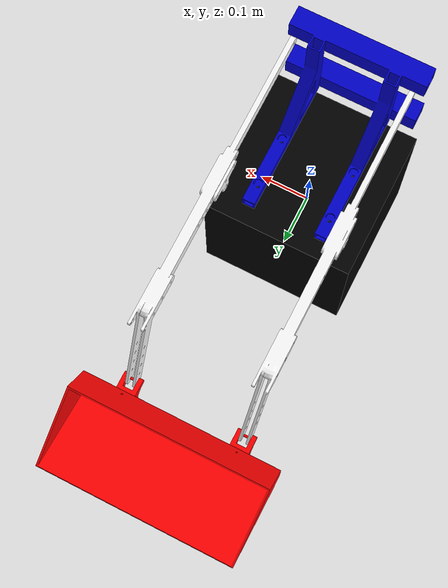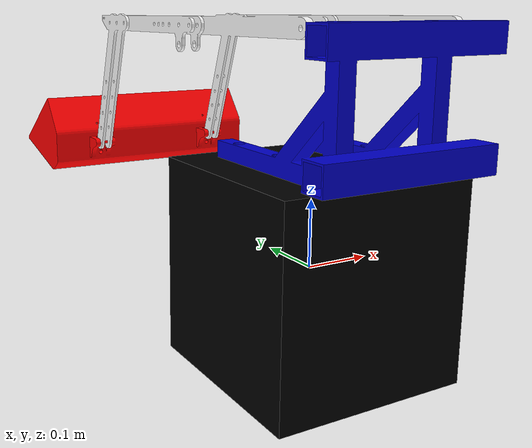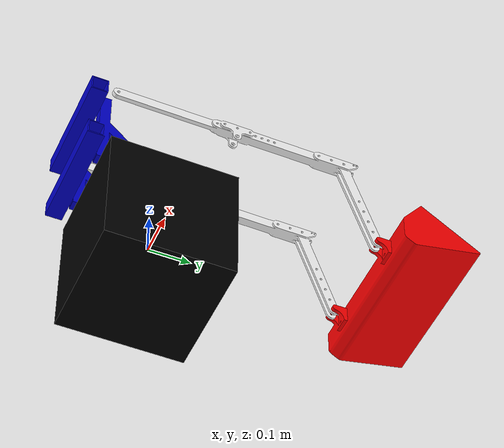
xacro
<?xml version="1.0"?>
<robot name="arm2" xmlns:xacro="http://www.ros.org/wiki/xacro">

<!-- properties -->
  <property name="cyl_radius" value="0.0475" />
  <property name="cyl_height" value="0.12" />
  <property name="cyl_mass" value="0.125" /> <!-- in kg, meter -->
  <property name="rev_axisY" value="0 1 0" />
  <property name="rev_axisZ" value="0 0 1" />
  <property name="deg_to_rad" value="0.01745329251994329577"/>

  <material name="blue">
    <color rgba="0 0 0.8 1"/>
  </material>
  <material name="black">
    <color rgba="0 0 0 1"/>
  </material>
  <material name="white">
    <color rgba="1 1 1 1"/>
  </material>
    <material name="red">
    <color rgba="1 0 0 1"/>
  </material>

  <xacro:macro name="transmission_arm" params="joint_name">
	  <transmission name="tran1">
	    <type>transmission_interface/SimpleTransmission</type>
	    <joint name="${joint_name}_joint">
	      <hardwareInterface>hardware_interface/PositionJointInterface</hardwareInterface>
	    </joint>
	    <actuator name="${joint_name}_motor">
	      <hardwareInterface>hardware_interface/PositionJointInterface</hardwareInterface>
	      <mechanicalReduction>1</mechanicalReduction>
	    </actuator>
	  </transmission>
   </xacro:macro>

<link name="base_link" >
      <visual>
      <geometry>
        <box size="0.3 0.3 0.3"/>
      </geometry>
      <material name="black"/>
    </visual>
    <collision>
      <geometry>
        <box size="0.3 0.3 0.3"/>
      </geometry>
    </collision>
    <inertial>
      <origin xyz="0 0 0" rpy="0 0 0"/>
      <mass value="100000" />
      <inertia ixx="100000" ixy="0.0" ixz="0.0" iyy="100000" iyz="0.0" izz="100000"/>
   </inertial>
  </link>

  <link
    name="base_arm">
    <inertial>
      <origin
        xyz="-8.9512E-17 0.080906 0.065805"
        rpy="0 0 0" />
      <mass
        value="1.6502" />
      <inertia
        ixx="0.5"
        ixy="0"
        ixz="0"
        iyy="0.5"
        iyz="0"
        izz="0.5" />
    </inertial>
    <visual>
      <origin
        xyz="0 0 0"
        rpy="0 0 0" />
      <geometry>
        <mesh
          filename="package://arm2/meshes/base_arm.STL" />
      </geometry>
      <material name="blue"/>
    </visual>
    <collision>
      <origin
        xyz="0 0 0"
        rpy="0 0 0" />
      <geometry>
        <mesh
          filename="package://arm2/meshes/base_arm.STL" />
      </geometry>
    </collision>
  </link>

  <link
    name="arm">
    <inertial>
      <origin
        xyz="2.1756E-15 0.38607 -0.022642"
        rpy="0 0 0" />
      <mass
        value="1.6541" />
      <inertia
        ixx="0.020029"
        ixy="-3.1779E-16"
        ixz="1.6265E-16"
        iyy="0.0233"
        iyz="0.0034648"
        izz="0.041275" />
    </inertial>
    <visual>
      <origin
        xyz="0 0 0"
        rpy="0 0 0" />
      <geometry>
        <mesh
          filename="package://arm2/meshes/arm.STL" />
      </geometry>
      <material name="white"/>
    </visual>
    <collision>
      <origin
        xyz="0 0 0"
        rpy="0 0 0" />
      <geometry>
        <mesh
          filename="package://arm2/meshes/arm.STL" />
      </geometry>
    </collision>
  </link>

  <link
    name="bucket">
    <inertial>
      <origin
        xyz="-1.7467E-14 0.081094 -0.0092968"
        rpy="0 0 0" />
      <mass
        value="0.74403" />
      <inertia
        ixx="0.00060709"
        ixy="1.575E-16"
        ixz="4.731E-16"
        iyy="0.0060723"
        iyz="-4.2694E-06"
        izz="0.0066375" />
    </inertial>
    <visual>
      <origin
        xyz="0 0 0"
        rpy="0 0 0" />
      <geometry>
        <mesh
          filename="package://arm2/meshes/bucket.STL" />
      </geometry>
      <material name="red"/>
    </visual>
    <collision>
      <origin
        xyz="0 0 0"
        rpy="0 0 0" />
      <geometry>
        <mesh
          filename="package://arm2/meshes/bucket.STL" />
      </geometry>
    </collision>
  </link>

  <joint name="fix" type="fixed">
    <parent link="base_link"/>
    <child link="base_arm"/>
    <origin xyz="0 -0.2 0.16" rpy="0 0 0" />
  </joint>

  <joint
    name="arm_joint"
    type="revolute">
    <origin
      xyz="0 0.068765 0.18244"
      rpy="-0.0065548 8.1987E-19 1.4009E-16" />
    <parent
      link="base_arm" />
    <child
      link="arm" />
    <axis
      xyz="-1 0 0" />
    <limit effort="1000.0" lower="-0.5" upper="0.548" velocity="0.5"/>
  </joint>

  <joint
    name="bucket_joint"
    type="revolute">
    <origin
      xyz="0 0.63123 -0.22318"
      rpy="0.0093956 -2.6528E-16 1.0777E-16" />
    <parent
      link="arm" />
    <child
      link="bucket" />
    <axis
      xyz="-1 0 0" />
    <limit effort="1000.0" lower="-0.5" upper="0.548" velocity="0.5"/>
  </joint>

<gazebo reference="base_arm">
<material>Gazebo/Black</material>
</gazebo>
<gazebo reference="arm">
<material>Gazebo/White</material>
</gazebo>
<gazebo reference="bucket">
<material>Gazebo/Blue</material>
</gazebo>

  <!-- Transmissions for ROS Control -->

   <xacro:transmission_arm joint_name="arm"/>
   <xacro:transmission_arm joint_name="bucket"/>

  <!-- ros_control plugin -->
  <gazebo>
    <plugin name="gazebo_ros_control" filename="libgazebo_ros_control.so">
      <robotNamespace>/arm2</robotNamespace>
    </plugin>
  </gazebo>

</robot>
